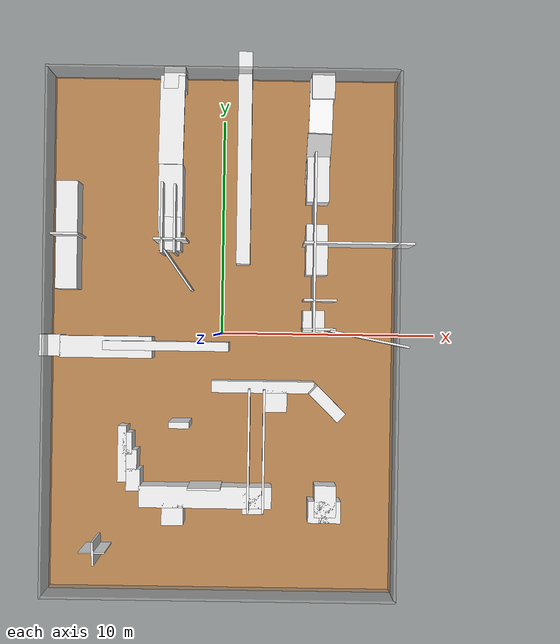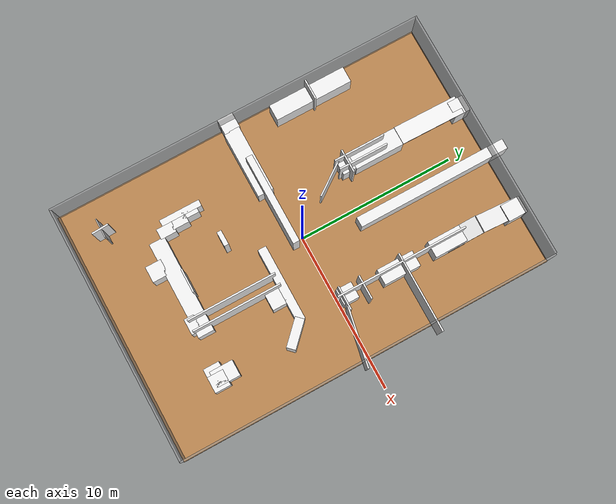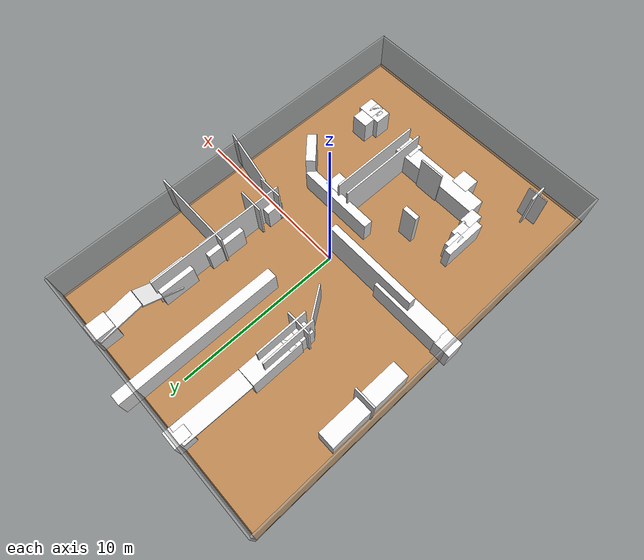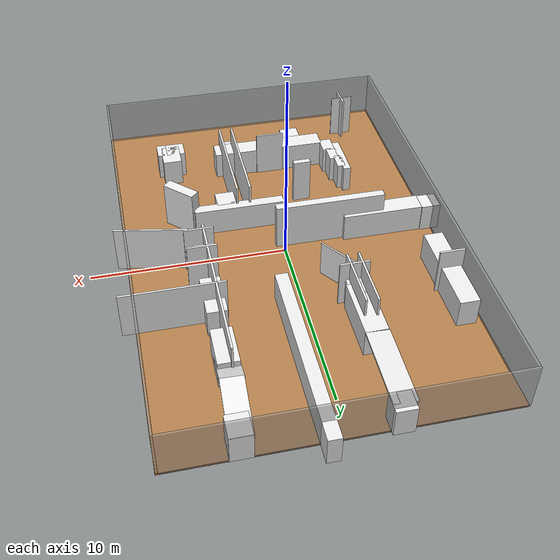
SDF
<sdf version="1.7">
 <world name="default">
  <light name="sun" type="directional">
   <pose>0 0 10 0 -0 0</pose>
   <diffuse>0.8 0.8 0.8 1</diffuse>
   <specular>0.2 0.2 0.2 1</specular>
   <attenuation>
    <range>1000</range>
    <constant>0.9</constant>
    <linear>0.01</linear>
    <quadratic>0.001</quadratic>
   </attenuation>
   <direction>-0.5 0.1 -0.9</direction>
   <spot><inner_angle>0</inner_angle><outer_angle>0</outer_angle><falloff>0</falloff></spot>
  </light>
  <physics name="default_physics" default="0" type="ode">
   <real_time_update_rate>1000</real_time_update_rate>
   <max_step_size>0.001</max_step_size>
   <real_time_factor>1</real_time_factor>
   <ode>
    <solver>
     <type>quick</type>
     <iters>150</iters>
     <precon_iters>0</precon_iters>
     <sor>1.4</sor>
     <use_dynamic_moi_rescaling>1</use_dynamic_moi_rescaling>
    </solver>
    <constraints>
     <cfm>1e-05</cfm>
     <erp>0.2</erp>
     <contact_max_correcting_vel>2000</contact_max_correcting_vel>
     <contact_surface_layer>0.01</contact_surface_layer>
    </constraints>
   </ode>
  </physics>
  <model name="box_1">
   <pose>0.05 -12.05 1.25 0 -0 0</pose>
   <static>1</static>
   <link name="link">
    <collision name="collision"><geometry><box><size>16.1 0.1 2.5</size></box></geometry></collision>
    <visual name="visual">
     <geometry><box><size>16.1 0.1 2.5</size></box></geometry>
     <material>
      <script><name>Gazebo/GreyTransparent</name><uri>file://media/materials/scripts/gazebo.material</uri></script>
     </material>
    </visual>
   </link>
  </model>
  <model name="box_2">
   <pose>8.06174 -0.026302 1.25 0 -0 0</pose>
   <static>1</static>
   <link name="link">
    <collision name="collision"><geometry><box><size>0.1 24.1 2.5</size></box></geometry></collision>
    <visual name="visual">
     <geometry><box><size>0.1 24.1 2.5</size></box></geometry>
     <material>
      <script><name>Gazebo/GreyTransparent</name><uri>file://media/materials/scripts/gazebo.material</uri></script>
     </material>
    </visual>
   </link>
  </model>
  <model name="box_3">
   <pose>-0.05 12.05 1.25 0 -0 0</pose>
   <static>1</static>
   <link name="link">
    <collision name="collision"><geometry><box><size>16.1 0.1 2.5</size></box></geometry></collision>
    <visual name="visual">
     <geometry><box><size>16.1 0.1 2.5</size></box></geometry>
     <material>
      <script><name>Gazebo/GreyTransparent</name><uri>file://media/materials/scripts/gazebo.material</uri></script>
     </material>
    </visual>
   </link>
  </model>
  <model name="box_4">
   <pose>-8.05 -0.05 1.25 0 -0 0</pose>
   <static>1</static>
   <link name="link">
    <collision name="collision"><geometry><box><size>0.1 24.1 2.5</size></box></geometry></collision>
    <visual name="visual">
     <geometry><box><size>0.1 24.1 2.5</size></box></geometry>
     <material>
      <script><name>Gazebo/GreyTransparent</name><uri>file://media/materials/scripts/gazebo.material</uri></script>
     </material>
    </visual>
   </link>
  </model>
  <model name="box_5">
   <pose>0.032076 -0.052717 -0.05 0 -0 0</pose>
   <static>1</static>
   <link name="link">
    <collision name="collision"><geometry><box><size>16.2 24.2 0.1</size></box></geometry></collision>
    <visual name="visual">
     <geometry><box><size>16.2 24.2 0.1</size></box></geometry>
     <material>
      <script><name>Gazebo/WoodFloor</name><uri>file://media/materials/scripts/gazebo.material</uri></script>
     </material>
    </visual>
   </link>
  </model>
  <gravity>0 0 -9.8066</gravity>
  <magnetic_field>6e-06 2.3e-05 -4.2e-05</magnetic_field>
  <atmosphere type="adiabatic"/>
  <scene><ambient>0.4 0.4 0.4 1</ambient><background>0.7 0.7 0.7 1</background><shadows>1</shadows></scene>
  <spherical_coordinates>
   <surface_model>EARTH_WGS84</surface_model>
   <latitude_deg>0</latitude_deg>
   <longitude_deg>0</longitude_deg>
   <elevation>0</elevation>
   <heading_deg>0</heading_deg>
  </spherical_coordinates>
  <model name="box_8_clone">
   <pose>6.77562 -0.136237 1.25 0 0 -0.191358</pose>
   <static>1</static>
   <link name="link">
    <collision name="collision"><geometry><box><size>3.67087 0.1 2.5</size></box></geometry></collision>
    <visual name="visual">
     <geometry><box><size>3.67087 0.1 2.5</size></box></geometry>
     <material>
      <script><name>Gazebo/White</name><uri>file://media/materials/scripts/gazebo.material</uri></script>
     </material>
    </visual>
   </link>
  </model>
  <model name="box_9_clone_clone_0">
   <pose>-2.15604 -8.36183 0.75 0 -0 0</pose>
   <static>1</static>
   <link name="link">
    <collision name="collision"><geometry><box><size>1 1 1.5</size></box></geometry></collision>
    <visual name="visual">
     <geometry><box><size>1 1 1.5</size></box></geometry>
     <material>
      <script><name>Gazebo/White</name><uri>file://media/materials/scripts/gazebo.material</uri></script>
     </material>
    </visual>
   </link>
  </model>
  <model name="box_9_clone_clone_1">
   <pose>-0.652667 -7.55684 0.75 0 -0 0</pose>
   <static>1</static>
   <link name="link">
    <collision name="collision"><geometry><box><size>6.13337 1 1.5</size></box></geometry></collision>
    <visual name="visual">
     <geometry><box><size>6.13337 1 1.5</size></box></geometry>
     <material>
      <script><name>Gazebo/White</name><uri>file://media/materials/scripts/gazebo.material</uri></script>
     </material>
    </visual>
   </link>
  </model>
  <model name="box_9_clone_clone_2">
   <pose>-3.98503 -6.7936 0.75 0 -0 0</pose>
   <static>1</static>
   <link name="link">
    <collision name="collision"><geometry><box><size>0.657977 1 1.5</size></box></geometry></collision>
    <visual name="visual">
     <geometry><box><size>0.657977 1 1.5</size></box></geometry>
     <material>
      <script><name>Gazebo/White</name><uri>file://media/materials/scripts/gazebo.material</uri></script>
     </material>
    </visual>
   </link>
  </model>
  <model name="box_9_clone_clone_3">
   <pose>5.12025 -8.17677 0.75 0 -0 0</pose>
   <static>1</static>
   <link name="link">
    <collision name="collision"><geometry><box><size>1 1 1.5</size></box></geometry></collision>
    <visual name="visual">
     <geometry><box><size>1 1 1.5</size></box></geometry>
     <material>
      <script><name>Gazebo/White</name><uri>file://media/materials/scripts/gazebo.material</uri></script>
     </material>
    </visual>
   </link>
  </model>
  <model name="box_9_clone_clone_4">
   <pose>4.90057 -7.68592 0.75 0 -0 0</pose>
   <static>1</static>
   <link name="link">
    <collision name="collision"><geometry><box><size>1 1.46842 1.5</size></box></geometry></collision>
    <visual name="visual">
     <geometry><box><size>1 1.46842 1.5</size></box></geometry>
     <material>
      <script><name>Gazebo/White</name><uri>file://media/materials/scripts/gazebo.material</uri></script>
     </material>
    </visual>
   </link>
  </model>
  <model name="box_8_clone_clone_13_clone_clone_clone_clone_0">
   <pose>-2.08568 2.97538 0.706232 0 0 -0.951736</pose>
   <static>1</static>
   <link name="link">
    <collision name="collision"><geometry><box><size>2.42975 0.0889336 2.5</size></box></geometry></collision>
    <visual name="visual">
     <geometry><box><size>2.42975 0.0889336 2.5</size></box></geometry>
     <material>
      <script><name>Gazebo/White</name><uri>file://media/materials/scripts/gazebo.material</uri></script>
     </material>
    </visual>
   </link>
  </model>
  <model name="box_8_clone_clone_11_clone">
   <pose>-1.84167 -4.15885 1.25 0 0 -1.56165</pose>
   <static>1</static>
   <link name="link">
    <collision name="collision"><geometry><box><size>0.290754 0.918093 2.5</size></box></geometry></collision>
    <visual name="visual">
     <geometry><box><size>0.290754 0.918093 2.5</size></box></geometry>
     <material>
      <script><name>Gazebo/White</name><uri>file://media/materials/scripts/gazebo.material</uri></script>
     </material>
    </visual>
   </link>
  </model>
  <model name="box_8_clone_clone_4_clone_2">
   <pose>-7.16333 4.45808 1.25 0 -0 0</pose>
   <static>1</static>
   <link name="link">
    <collision name="collision"><geometry><box><size>1.26584 0.1 2.5</size></box></geometry></collision>
    <visual name="visual">
     <geometry><box><size>1.26584 0.1 2.5</size></box></geometry>
     <material>
      <script><name>Gazebo/White</name><uri>file://media/materials/scripts/gazebo.material</uri></script>
     </material>
    </visual>
   </link>
  </model>
  <model name="box_9_clone_clone_7_clone">
   <pose>-7.20708 4.47733 0.75 0 -0 0</pose>
   <static>1</static>
   <link name="link">
    <collision name="collision"><geometry><box><size>1 4.97616 1.5</size></box></geometry></collision>
    <visual name="visual">
     <geometry><box><size>1 4.97616 1.5</size></box></geometry>
     <material>
      <script><name>Gazebo/White</name><uri>file://media/materials/scripts/gazebo.material</uri></script>
     </material>
    </visual>
   </link>
  </model>
  <model name="box_9_clone_clone_7_clone_clone">
   <pose>-7.89766 -0.627489 0.75 0 -0 0</pose>
   <static>1</static>
   <link name="link">
    <collision name="collision"><geometry><box><size>1 1 1.5</size></box></geometry></collision>
    <visual name="visual">
     <geometry><box><size>1 1 1.5</size></box></geometry>
     <material>
      <script><name>Gazebo/White</name><uri>file://media/materials/scripts/gazebo.material</uri></script>
     </material>
    </visual>
   </link>
  </model>
  <model name="box_9_clone_clone_7_clone_clone_3">
   <pose>-4.51233 -5.59662 0.75 0 -0 0</pose>
   <static>1</static>
   <link name="link">
    <collision name="collision"><geometry><box><size>0.396462 2.57973 1.5</size></box></geometry></collision>
    <visual name="visual">
     <geometry><box><size>0.396462 2.57973 1.5</size></box></geometry>
     <material>
      <script><name>Gazebo/White</name><uri>file://media/materials/scripts/gazebo.material</uri></script>
     </material>
    </visual>
   </link>
  </model>
  <model name="box_9_clone_clone_7_clone_clone_4">
   <pose>-4.26983 -5.10984 0.75 0 -0 0</pose>
   <static>1</static>
   <link name="link">
    <collision name="collision"><geometry><box><size>0.426828 1 1.5</size></box></geometry></collision>
    <visual name="visual">
     <geometry><box><size>0.426828 1 1.5</size></box></geometry>
     <material>
      <script><name>Gazebo/White</name><uri>file://media/materials/scripts/gazebo.material</uri></script>
     </material>
    </visual>
   </link>
  </model>
  <model name="box_9_clone_clone_7_clone_clone_5">
   <pose>-4.09195 -5.89475 0.75 0 -0 0</pose>
   <static>1</static>
   <link name="link">
    <collision name="collision"><geometry><box><size>0.542495 1 1.5</size></box></geometry></collision>
    <visual name="visual">
     <geometry><box><size>0.542495 1 1.5</size></box></geometry>
     <material>
      <script><name>Gazebo/White</name><uri>file://media/materials/scripts/gazebo.material</uri></script>
     </material>
    </visual>
   </link>
  </model>
  <model name="box_9_clone_clone_5_clone_2_clone_0">
   <pose>4.37795 7.17451 0.75 0 -0 0</pose>
   <static>1</static>
   <link name="link">
    <collision name="collision"><geometry><box><size>1.02973 2.0893 1.5</size></box></geometry></collision>
    <visual name="visual">
     <geometry><box><size>1.02973 2.0893 1.5</size></box></geometry>
     <material>
      <script><name>Gazebo/White</name><uri>file://media/materials/scripts/gazebo.material</uri></script>
     </material>
    </visual>
   </link>
  </model>
  <model name="box_9_clone_clone_5_clone_2_clone_0_clone_0">
   <pose>4.61046 -8.1706 0.75 0 -0 0</pose>
   <static>1</static>
   <link name="link">
    <collision name="collision"><geometry><box><size>1 1 1.5</size></box></geometry></collision>
    <visual name="visual">
     <geometry><box><size>1 1 1.5</size></box></geometry>
     <material>
      <script><name>Gazebo/White</name><uri>file://media/materials/scripts/gazebo.material</uri></script>
     </material>
    </visual>
   </link>
  </model>
  <model name="box_6_clone_clone_4_clone">
   <pose>4.47434 10.5847 1.40455 0 -1.3182 1.53996</pose>
   <static>1</static>
   <link name="link">
    <collision name="collision"><geometry><box><size>0.1 1.08009 2.76392</size></box></geometry></collision>
    <visual name="visual">
     <geometry><box><size>0.1 1.08009 2.76392</size></box></geometry>
     <material>
      <script><name>Gazebo/White</name><uri>file://media/materials/scripts/gazebo.material</uri></script>
     </material>
    </visual>
   </link>
  </model>
  <model name="box_9_clone_clone_7_clone_clone_clone">
   <pose>-5.32159 -0.673379 0.75 0 -0 0</pose>
   <static>1</static>
   <link name="link">
    <collision name="collision"><geometry><box><size>4.25949 1 1.5</size></box></geometry></collision>
    <visual name="visual">
     <geometry><box><size>4.25949 1 1.5</size></box></geometry>
     <material>
      <script><name>Gazebo/White</name><uri>file://media/materials/scripts/gazebo.material</uri></script>
     </material>
    </visual>
   </link>
  </model>
  <model name="box_8_clone_clone_3_clone">
   <pose>6.25131 4.20674 1.25 0 -0 0</pose>
   <static>1</static>
   <link name="link">
    <collision name="collision"><geometry><box><size>5.04273 0.1 2.5</size></box></geometry></collision>
    <visual name="visual">
     <geometry><box><size>5.04273 0.1 2.5</size></box></geometry>
     <material>
      <script><name>Gazebo/White</name><uri>file://media/materials/scripts/gazebo.material</uri></script>
     </material>
    </visual>
   </link>
  </model>
  <model name="box_9_clone_clone_7_clone_0">
   <pose>0.952701 8.1379 0.75 0 -0 0</pose>
   <static>1</static>
   <link name="link">
    <collision name="collision"><geometry><box><size>0.641484 9.79262 1.5</size></box></geometry></collision>
    <visual name="visual">
     <geometry><box><size>0.641484 9.79262 1.5</size></box></geometry>
     <material>
      <script><name>Gazebo/White</name><uri>file://media/materials/scripts/gazebo.material</uri></script>
     </material>
    </visual>
   </link>
  </model>
  <model name="box_9_clone_clone_9_clone">
   <pose>-2.30467 11.7929 0.75 0 -0 0</pose>
   <static>1</static>
   <link name="link">
    <collision name="collision"><geometry><box><size>1 1 1.5</size></box></geometry></collision>
    <visual name="visual">
     <geometry><box><size>1 1 1.5</size></box></geometry>
     <material>
      <script><name>Gazebo/White</name><uri>file://media/materials/scripts/gazebo.material</uri></script>
     </material>
    </visual>
   </link>
  </model>
  <model name="box_6_clone_clone_3_clone_clone_clone">
   <pose>-2.74377 5.24994 1.25 0 -0 0</pose>
   <static>1</static>
   <link name="link">
    <collision name="collision"><geometry><box><size>0.1 3.23033 2.5</size></box></geometry></collision>
    <visual name="visual">
     <geometry><box><size>0.1 3.23033 2.5</size></box></geometry>
     <material>
      <script><name>Gazebo/White</name><uri>file://media/materials/scripts/gazebo.material</uri></script>
     </material>
    </visual>
   </link>
  </model>
  <model name="box_6_clone_clone_3_clone_clone_clone_clone">
   <pose>4.22525 4.13827 1.25 0 -0 0</pose>
   <static>1</static>
   <link name="link">
    <collision name="collision"><geometry><box><size>0.1 8.35343 2.5</size></box></geometry></collision>
    <visual name="visual">
     <geometry><box><size>0.1 8.35343 2.5</size></box></geometry>
     <material>
      <script><name>Gazebo/White</name><uri>file://media/materials/scripts/gazebo.material</uri></script>
     </material>
    </visual>
   </link>
  </model>
  <model name="box_6_clone_clone_3_clone_clone_clone_clone_0">
   <pose>2.0182 -5.31678 1.25 0 -0 0</pose>
   <static>1</static>
   <link name="link">
    <collision name="collision"><geometry><box><size>0.1 5.60332 2.5</size></box></geometry></collision>
    <visual name="visual">
     <geometry><box><size>0.1 5.60332 2.5</size></box></geometry>
     <material>
      <script><name>Gazebo/White</name><uri>file://media/materials/scripts/gazebo.material</uri></script>
     </material>
    </visual>
   </link>
  </model>
  <model name="box_6_clone_clone_3_clone_clone_clone_clone_0_clone">
   <pose>1.33283 -5.29976 1.25 0 -0 0</pose>
   <static>1</static>
   <link name="link">
    <collision name="collision"><geometry><box><size>0.1 5.60332 2.5</size></box></geometry></collision>
    <visual name="visual">
     <geometry><box><size>0.1 5.60332 2.5</size></box></geometry>
     <material>
      <script><name>Gazebo/White</name><uri>file://media/materials/scripts/gazebo.material</uri></script>
     </material>
    </visual>
   </link>
  </model>
  <model name="box_9_clone_clone_5_clone_2_clone_0_clone_clone">
   <pose>1.9475 -2.43744 0.75 0 -0 0</pose>
   <static>1</static>
   <link name="link">
    <collision name="collision"><geometry><box><size>4.74882 0.537178 1.5</size></box></geometry></collision>
    <visual name="visual">
     <geometry><box><size>4.74882 0.537178 1.5</size></box></geometry>
     <material>
      <script><name>Gazebo/White</name><uri>file://media/materials/scripts/gazebo.material</uri></script>
     </material>
    </visual>
   </link>
  </model>
  <model name="box_8_clone_clone">
   <pose>4.47101 0.276191 1.25 0 -0 0</pose>
   <static>1</static>
   <link name="link">
    <collision name="collision"><geometry><box><size>1.5 0.1 2.5</size></box></geometry></collision>
    <visual name="visual">
     <geometry><box><size>1.5 0.1 2.5</size></box></geometry>
     <material>
      <script><name>Gazebo/White</name><uri>file://media/materials/scripts/gazebo.material</uri></script>
     </material>
    </visual>
   </link>
  </model>
  <model name="box_9_clone_clone_7_clone_clone_0">
   <pose>-2.43804 4.59154 0.75 0 -0 0</pose>
   <static>1</static>
   <link name="link">
    <collision name="collision"><geometry><box><size>1 1.54675 1.5</size></box></geometry></collision>
    <visual name="visual">
     <geometry><box><size>1 1.54675 1.5</size></box></geometry>
     <material>
      <script><name>Gazebo/White</name><uri>file://media/materials/scripts/gazebo.material</uri></script>
     </material>
    </visual>
   </link>
  </model>
  <model name="box_9_clone_clone_5_clone_2_clone_0_clone_0_clone">
   <pose>1.56966 -7.808 0.75 0 -0 0</pose>
   <static>1</static>
   <link name="link">
    <collision name="collision"><geometry><box><size>1 1 1.5</size></box></geometry></collision>
    <visual name="visual">
     <geometry><box><size>1 1 1.5</size></box></geometry>
     <material>
      <script><name>Gazebo/White</name><uri>file://media/materials/scripts/gazebo.material</uri></script>
     </material>
    </visual>
   </link>
  </model>
  <model name="box_9_clone_clone_5_clone_2_clone_clone_clone_0_clone">
   <pose>4.3636 3.94247 0.75 0 -0 0</pose>
   <static>1</static>
   <link name="link">
    <collision name="collision"><geometry><box><size>0.996807 2.34121 1.5</size></box></geometry></collision>
    <visual name="visual">
     <geometry><box><size>0.996807 2.34121 1.5</size></box></geometry>
     <material>
      <script><name>Gazebo/White</name><uri>file://media/materials/scripts/gazebo.material</uri></script>
     </material>
    </visual>
   </link>
  </model>
  <model name="box_9_clone_clone_5_clone_2_clone_clone_clone_0_clone_clone">
   <pose>4.24919 0.631939 0.75 0 -0 0</pose>
   <static>1</static>
   <link name="link">
    <collision name="collision"><geometry><box><size>1 1 1.5</size></box></geometry></collision>
    <visual name="visual">
     <geometry><box><size>1 1 1.5</size></box></geometry>
     <material>
      <script><name>Gazebo/White</name><uri>file://media/materials/scripts/gazebo.material</uri></script>
     </material>
    </visual>
   </link>
  </model>
  <model name="box_6_clone_clone_3_clone_clone_clone_clone_1">
   <pose>-2.16782 5.21001 1.25 0 -0 0.001144</pose>
   <static>1</static>
   <link name="link">
    <collision name="collision"><geometry><box><size>0.1 3.12165 2.5</size></box></geometry></collision>
    <visual name="visual">
     <geometry><box><size>0.1 3.12165 2.5</size></box></geometry>
     <material>
      <script><name>Gazebo/White</name><uri>file://media/materials/scripts/gazebo.material</uri></script>
     </material>
    </visual>
   </link>
  </model>
  <model name="box_9_clone_clone_8_clone_0_clone">
   <pose>-2.43485 6.21978 0.75 0 -0 0</pose>
   <static>1</static>
   <link name="link">
    <collision name="collision"><geometry><box><size>1.12201 3.13013 1.5</size></box></geometry></collision>
    <visual name="visual">
     <geometry><box><size>1.12201 3.13013 1.5</size></box></geometry>
     <material>
      <script><name>Gazebo/White</name><uri>file://media/materials/scripts/gazebo.material</uri></script>
     </material>
    </visual>
   </link>
  </model>
  <model name="box_8_clone_clone_3_clone_clone_clone">
   <pose>-2.49058 -0.585122 1.25 0 -0 0</pose>
   <static>1</static>
   <link name="link">
    <collision name="collision"><geometry><box><size>5.72177 0.415191 2.5</size></box></geometry></collision>
    <visual name="visual">
     <geometry><box><size>5.72177 0.415191 2.5</size></box></geometry>
     <material>
      <script><name>Gazebo/White</name><uri>file://media/materials/scripts/gazebo.material</uri></script>
     </material>
    </visual>
   </link>
  </model>
  <audio><device>default</device></audio>
  <model name="box_6_clone_clone_4_clone_clone">
   <pose>4.38248 8.16427 1.1171 0 -1.11157 -1.60232</pose>
   <static>1</static>
   <link name="link">
    <collision name="collision"><geometry><box><size>0.1 1.10854 2.5</size></box></geometry></collision>
    <visual name="visual">
     <geometry><box><size>0.1 1.10854 2.5</size></box></geometry>
     <material>
      <script><name>Gazebo/White</name><uri>file://media/materials/scripts/gazebo.material</uri></script>
     </material>
    </visual>
   </link>
  </model>
  <model name="box_9_clone_clone_5_clone_2_clone_0_clone_0_clone_0">
   <pose>2.56687 -3.08492 0.75 0 -0 0</pose>
   <static>1</static>
   <link name="link">
    <collision name="collision"><geometry><box><size>1 1 1.5</size></box></geometry></collision>
    <visual name="visual">
     <geometry><box><size>1 1 1.5</size></box></geometry>
     <material>
      <script><name>Gazebo/White</name><uri>file://media/materials/scripts/gazebo.material</uri></script>
     </material>
    </visual>
   </link>
  </model>
  <model name="box_8_clone_clone_11_clone_clone">
   <pose>4.88426 -3.11332 1.25 0 0 -0.778897</pose>
   <static>1</static>
   <link name="link">
    <collision name="collision"><geometry><box><size>1.81834 0.556135 2.5</size></box></geometry></collision>
    <visual name="visual">
     <geometry><box><size>1.81834 0.556135 2.5</size></box></geometry>
     <material>
      <script><name>Gazebo/White</name><uri>file://media/materials/scripts/gazebo.material</uri></script>
     </material>
    </visual>
   </link>
  </model>
  <model name="box_8_clone_clone_11_clone_clone_0">
   <pose>-5.67141 -10.0374 1.25 0 -0 1.62008</pose>
   <static>1</static>
   <link name="link">
    <collision name="collision"><geometry><box><size>1.06277 0.1 2.5</size></box></geometry></collision>
    <visual name="visual">
     <geometry><box><size>1.06277 0.1 2.5</size></box></geometry>
     <material>
      <script><name>Gazebo/White</name><uri>file://media/materials/scripts/gazebo.material</uri></script>
     </material>
    </visual>
   </link>
  </model>
  <model name="box_8_clone_clone_11_clone_clone_1">
   <pose>-5.71384 -9.99262 1.25 0 -0 0</pose>
   <static>1</static>
   <link name="link">
    <collision name="collision"><geometry><box><size>1.19714 0.0589998 2.5</size></box></geometry></collision>
    <visual name="visual">
     <geometry><box><size>1.19714 0.0589998 2.5</size></box></geometry>
     <material>
      <script><name>Gazebo/White</name><uri>file://media/materials/scripts/gazebo.material</uri></script>
     </material>
    </visual>
   </link>
  </model>
  <model name="box_8_clone_clone_11_clone_clone_1_clone">
   <pose>-0.668626 -7.0443 1.25 0 -0 0</pose>
   <static>1</static>
   <link name="link">
    <collision name="collision"><geometry><box><size>1.5 0.1 2.5</size></box></geometry></collision>
    <visual name="visual">
     <geometry><box><size>1.5 0.1 2.5</size></box></geometry>
     <material>
      <script><name>Gazebo/White</name><uri>file://media/materials/scripts/gazebo.material</uri></script>
     </material>
    </visual>
   </link>
  </model>
  <model name="box_8_clone_clone_4_clone_2_clone">
   <pose>-2.37022 4.28765 1.25 0 -0 0</pose>
   <static>1</static>
   <link name="link">
    <collision name="collision"><geometry><box><size>1.5 0.1 2.5</size></box></geometry></collision>
    <visual name="visual">
     <geometry><box><size>1.5 0.1 2.5</size></box></geometry>
     <material>
      <script><name>Gazebo/White</name><uri>file://media/materials/scripts/gazebo.material</uri></script>
     </material>
    </visual>
   </link>
  </model>
  <model name="box_8_clone_clone_4_clone_2_clone_clone">
   <pose>4.50184 1.59903 1.25 0 -0 0</pose>
   <static>1</static>
   <link name="link">
    <collision name="collision"><geometry><box><size>1.5 0.1 2.5</size></box></geometry></collision>
    <visual name="visual">
     <geometry><box><size>1.5 0.1 2.5</size></box></geometry>
     <material>
      <script><name>Gazebo/White</name><uri>file://media/materials/scripts/gazebo.material</uri></script>
     </material>
    </visual>
   </link>
  </model>
  <model name="box_9_clone_clone_5_clone_2_clone_0_clone">
   <pose>4.57033 11.5179 0.75 0 -0 0</pose>
   <static>1</static>
   <link name="link">
    <collision name="collision"><geometry><box><size>1.0548 1.22023 1.5</size></box></geometry></collision>
    <visual name="visual">
     <geometry><box><size>1.0548 1.22023 1.5</size></box></geometry>
     <material>
      <script><name>Gazebo/White</name><uri>file://media/materials/scripts/gazebo.material</uri></script>
     </material>
    </visual>
   </link>
  </model>
  <model name="box_8_clone_clone_3_clone_clone_clone_0">
   <pose>-2.41847 9.84203 1.44047 -1.57067 -0.035681 -0.014782</pose>
   <static>1</static>
   <link name="link">
    <collision name="collision"><geometry><box><size>1.1445 0.1 4.08788</size></box></geometry></collision>
    <visual name="visual">
     <geometry><box><size>1.1445 0.1 4.08788</size></box></geometry>
     <material>
      <script><name>Gazebo/White</name><uri>file://media/materials/scripts/gazebo.material</uri></script>
     </material>
    </visual>
   </link>
  </model>
 </world>
</sdf>
